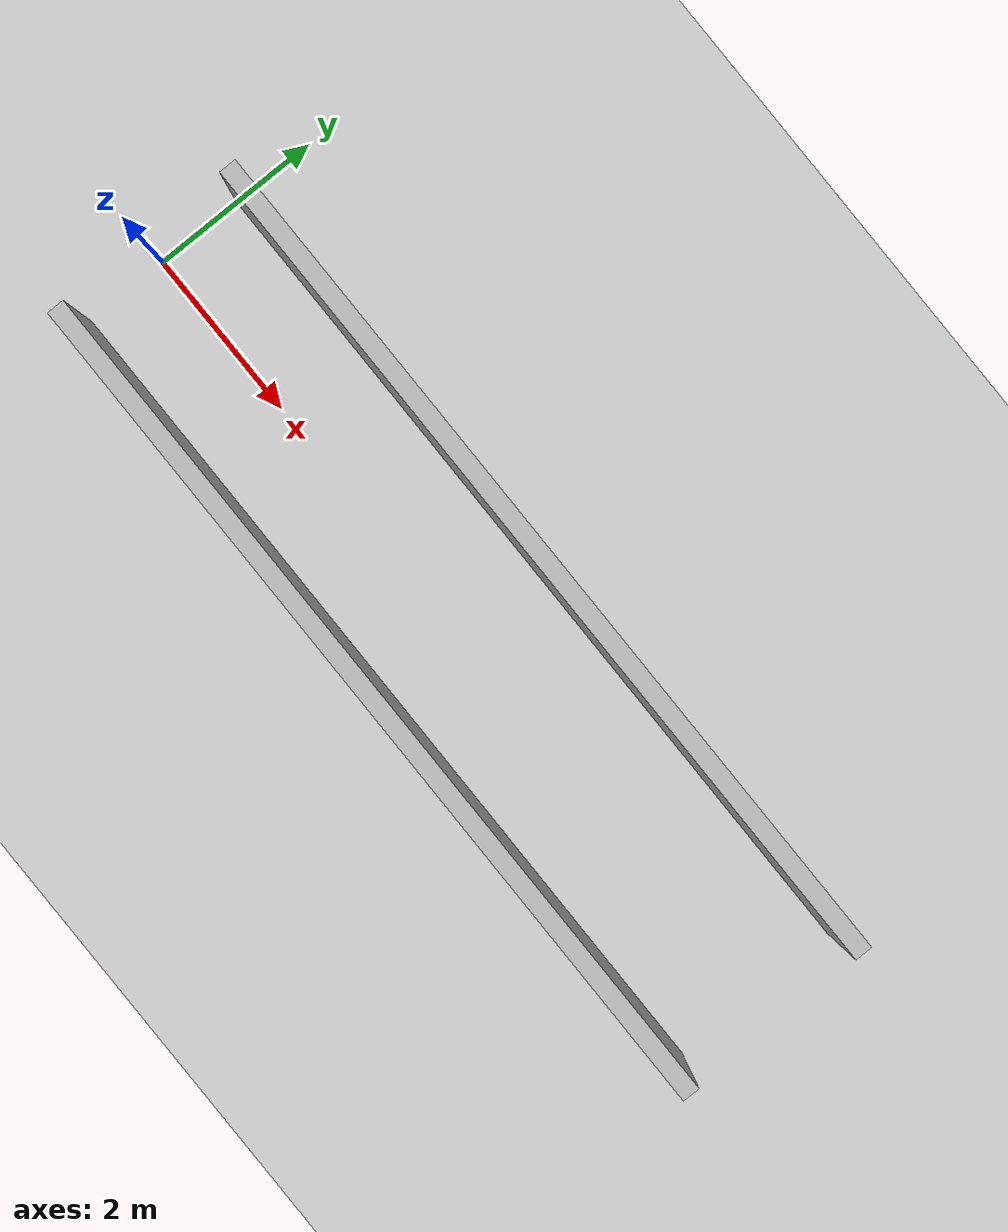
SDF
<?xml version="1.0"?>
<sdf version="1.6">
  <world name="v2-04e3-corridor-s4724">
    <gravity>0 0 -9.81</gravity>
    <physics name="v2_deterministic" type="ode">
      <max_step_size>0.002</max_step_size>
      <real_time_update_rate>500</real_time_update_rate>
    </physics>
    <include>
      <uri>model://sun</uri>
    </include>
    <include>
      <uri>model://ground_plane</uri>
    </include>
    <model name="corridor-left">
      <static>true</static>
      <pose>4.997266996 1.102011875 0.600000000 0 0 -0.001749893</pose>
      <link name="link">
        <collision name="collision">
          <geometry>
            <box>
              <size>10.000000 0.200000 1.200000</size>
            </box>
          </geometry>
        </collision>
        <visual name="visual">
          <geometry>
            <box>
              <size>10.000000 0.200000 1.200000</size>
            </box>
          </geometry>
        </visual>
      </link>
    </model>
    <model name="corridor-right">
      <static>true</static>
      <pose>5.006845437 -1.095587835 0.600000000 0 0 -0.002443827</pose>
      <link name="link">
        <collision name="collision">
          <geometry>
            <box>
              <size>10.000000 0.200000 1.200000</size>
            </box>
          </geometry>
        </collision>
        <visual name="visual">
          <geometry>
            <box>
              <size>10.000000 0.200000 1.200000</size>
            </box>
          </geometry>
        </visual>
      </link>
    </model>
  </world>
</sdf>
